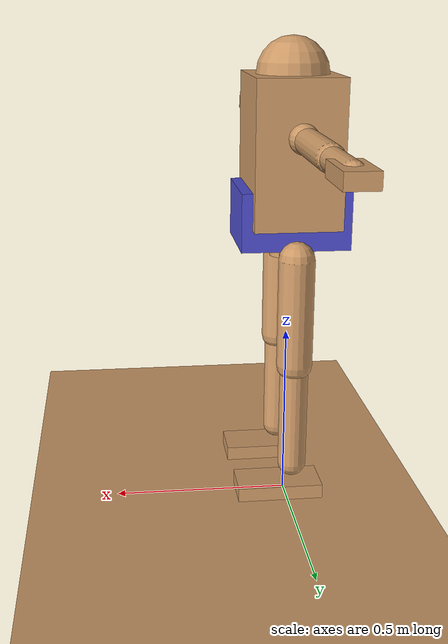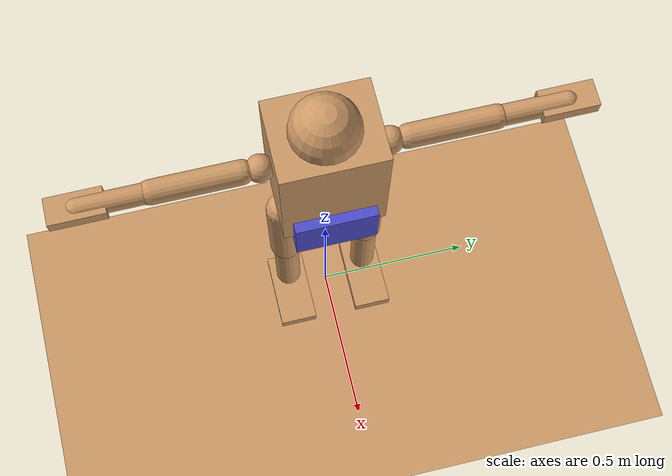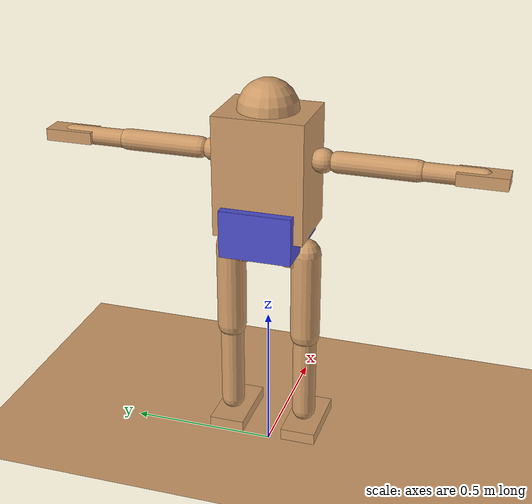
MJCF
<!-- MuJoCo model file for Unitree G1 Humanoid Robot -->
<mujoco model="unitree_g1">
    <compiler angle="radian" meshdir="../meshes" texturedir="../textures"/>

    <default>
        <joint armature="0.01" damping="0.1" limited="true"/>
        <geom conaffinity="0" condim="3" density="1000" friction="0.7 0.1 0.1" rgba="0.8 0.6 0.4 1"/>
        <motor ctrllimited="true" ctrlrange="-100 100"/>
    </default>

    <asset>
        <texture type="skybox" builtin="gradient" rgb1="0.3 0.5 0.7" rgb2="0 0 0" width="512" height="512"/>
        <texture name="texplane" type="2d" builtin="checker" rgb1=".2 .3 .4" rgb2=".1 0.15 0.2" width="512" height="512" mark="cross" markrgb=".8 .8 .8"/>
        <material name="matplane" reflectance="0.3" texture="texplane" texrepeat="1 1" texuniform="true"/>
    </asset>

    <worldbody>
        <light directional="true" diffuse=".4 .4 .4" specular="0.1 0.1 0.1" pos="0 0 5.0" dir="0 0 -1" castshadow="false"/>
        <light directional="false" diffuse=".7 .7 .7" specular="0.3 0.3 0.3" pos="2 -2 4" dir="-2 2 -4" castshadow="true"/>
        <geom name="floor" pos="0 0 0" size="50 50 1" type="plane" material="matplane" condim="3"/>

        <!-- Base/Pelvis -->
        <body name="base_link" pos="0 0 0.85">
            <inertial pos="0 0 0" mass="5.0" diaginertia="0.05 0.05 0.03"/>
            <joint name="floating_base" type="free"/>
            <geom name="pelvis" type="box" size="0.15 0.12 0.08" rgba="0.3 0.3 0.8 1"/>
            <!-- IMU site -->
            <site name="imu_site" pos="0 0 0" size="0.01" rgba="0 0 1 0"/>

            <!-- Left Leg -->
            <body name="left_hip_yaw" pos="0 0.08 -0.05">
                <inertial pos="0 0 -0.05" mass="1.0" diaginertia="0.002 0.002 0.001"/>
                <joint name="left_hip_yaw_joint" type="hinge" axis="0 0 1" range="-0.5 0.5"/>
                <geom name="left_hip_yaw_geom" type="cylinder" size="0.04 0.03" euler="1.57 0 0"/>

                <body name="left_hip_roll" pos="0 0 -0.05">
                    <inertial pos="0 0.03 0" mass="1.5" diaginertia="0.003 0.003 0.002"/>
                    <joint name="left_hip_roll_joint" type="hinge" axis="1 0 0" range="-0.4 0.8"/>
                    <geom name="left_hip_roll_geom" type="cylinder" size="0.04 0.04" euler="0 0 0"/>

                    <body name="left_hip_pitch" pos="0 0.05 0">
                        <inertial pos="0 0 -0.15" mass="2.0" diaginertia="0.01 0.01 0.003"/>
                        <joint name="left_hip_pitch_joint" type="hinge" axis="0 1 0" range="-2.0 0.7"/>
                        <geom name="left_thigh" type="capsule" fromto="0 0 0 0 0 -0.3" size="0.05"/>

                        <body name="left_knee" pos="0 0 -0.3">
                            <inertial pos="0 0 -0.15" mass="1.5" diaginertia="0.008 0.008 0.002"/>
                            <joint name="left_knee_joint" type="hinge" axis="0 1 0" range="-0.1 2.5"/>
                            <geom name="left_shin" type="capsule" fromto="0 0 0 0 0 -0.3" size="0.04"/>

                            <body name="left_ankle_pitch" pos="0 0 -0.3">
                                <inertial pos="0 0 0" mass="0.5" diaginertia="0.002 0.002 0.001"/>
                                <joint name="left_ankle_pitch_joint" type="hinge" axis="0 1 0" range="-0.7 0.7"/>
                                <geom name="left_ankle_pitch_geom" type="cylinder" size="0.03 0.02" euler="0 1.57 0"/>

                                <body name="left_ankle_roll" pos="0 0 -0.05">
                                    <inertial pos="0 0 -0.025" mass="0.8" diaginertia="0.002 0.004 0.003"/>
                                    <joint name="left_ankle_roll_joint" type="hinge" axis="1 0 0" range="-0.4 0.4"/>
                                    <geom name="left_foot" type="box" size="0.12 0.06 0.02" pos="0.04 0 -0.02"/>
                                </body>
                            </body>
                        </body>
                    </body>
                </body>
            </body>

            <!-- Right Leg -->
            <body name="right_hip_yaw" pos="0 -0.08 -0.05">
                <inertial pos="0 0 -0.05" mass="1.0" diaginertia="0.002 0.002 0.001"/>
                <joint name="right_hip_yaw_joint" type="hinge" axis="0 0 1" range="-0.5 0.5"/>
                <geom name="right_hip_yaw_geom" type="cylinder" size="0.04 0.03" euler="1.57 0 0"/>

                <body name="right_hip_roll" pos="0 0 -0.05">
                    <inertial pos="0 -0.03 0" mass="1.5" diaginertia="0.003 0.003 0.002"/>
                    <joint name="right_hip_roll_joint" type="hinge" axis="1 0 0" range="-0.8 0.4"/>
                    <geom name="right_hip_roll_geom" type="cylinder" size="0.04 0.04" euler="0 0 0"/>

                    <body name="right_hip_pitch" pos="0 -0.05 0">
                        <inertial pos="0 0 -0.15" mass="2.0" diaginertia="0.01 0.01 0.003"/>
                        <joint name="right_hip_pitch_joint" type="hinge" axis="0 1 0" range="-2.0 0.7"/>
                        <geom name="right_thigh" type="capsule" fromto="0 0 0 0 0 -0.3" size="0.05"/>

                        <body name="right_knee" pos="0 0 -0.3">
                            <inertial pos="0 0 -0.15" mass="1.5" diaginertia="0.008 0.008 0.002"/>
                            <joint name="right_knee_joint" type="hinge" axis="0 1 0" range="-0.1 2.5"/>
                            <geom name="right_shin" type="capsule" fromto="0 0 0 0 0 -0.3" size="0.04"/>

                            <body name="right_ankle_pitch" pos="0 0 -0.3">
                                <inertial pos="0 0 0" mass="0.5" diaginertia="0.002 0.002 0.001"/>
                                <joint name="right_ankle_pitch_joint" type="hinge" axis="0 1 0" range="-0.7 0.7"/>
                                <geom name="right_ankle_pitch_geom" type="cylinder" size="0.03 0.02" euler="0 1.57 0"/>

                                <body name="right_ankle_roll" pos="0 0 -0.05">
                                    <inertial pos="0 0 -0.025" mass="0.8" diaginertia="0.002 0.004 0.003"/>
                                    <joint name="right_ankle_roll_joint" type="hinge" axis="1 0 0" range="-0.4 0.4"/>
                                    <geom name="right_foot" type="box" size="0.12 0.06 0.02" pos="0.04 0 -0.02"/>
                                </body>
                            </body>
                        </body>
                    </body>
                </body>
            </body>

            <!-- Torso -->
            <body name="torso" pos="0 0 0.08">
                <inertial pos="0 0 0.1" mass="8.0" diaginertia="0.08 0.08 0.05"/>
                <joint name="waist_yaw_joint" type="hinge" axis="0 0 1" range="-0.8 0.8"/>
                <geom name="torso_geom" type="box" size="0.12 0.15 0.2" pos="0 0 0.1"/>

                <!-- Left Arm -->
                <body name="left_shoulder_pitch" pos="0 0.18 0.15">
                    <inertial pos="0 0 0" mass="1.0" diaginertia="0.002 0.002 0.001"/>
                    <joint name="left_shoulder_pitch_joint" type="hinge" axis="0 1 0" range="-2.8 2.8"/>
                    <geom name="left_shoulder_pitch_geom" type="sphere" size="0.04"/>

                    <body name="left_shoulder_roll" pos="0 0.05 0">
                        <inertial pos="0 0.1 0" mass="0.8" diaginertia="0.005 0.001 0.005"/>
                        <joint name="left_shoulder_roll_joint" type="hinge" axis="1 0 0" range="-0.3 3.1"/>
                        <geom name="left_upper_arm" type="capsule" fromto="0 0 0 0 0.25 0" size="0.035"/>

                        <body name="left_elbow" pos="0 0.25 0">
                            <inertial pos="0 0.1 0" mass="0.6" diaginertia="0.003 0.001 0.003"/>
                            <joint name="left_elbow_joint" type="hinge" axis="0 1 0" range="-2.0 0.1"/>
                            <geom name="left_forearm" type="capsule" fromto="0 0 0 0 0.2 0" size="0.03"/>

                            <body name="left_wrist" pos="0 0.2 0">
                                <inertial pos="0 0.05 0" mass="0.3" diaginertia="0.001 0.001 0.001"/>
                                <joint name="left_wrist_joint" type="hinge" axis="0 1 0" range="-1.0 1.0"/>
                                <geom name="left_hand" type="box" size="0.04 0.08 0.02"/>
                            </body>
                        </body>
                    </body>
                </body>

                <!-- Right Arm -->
                <body name="right_shoulder_pitch" pos="0 -0.18 0.15">
                    <inertial pos="0 0 0" mass="1.0" diaginertia="0.002 0.002 0.001"/>
                    <joint name="right_shoulder_pitch_joint" type="hinge" axis="0 1 0" range="-2.8 2.8"/>
                    <geom name="right_shoulder_pitch_geom" type="sphere" size="0.04"/>

                    <body name="right_shoulder_roll" pos="0 -0.05 0">
                        <inertial pos="0 -0.1 0" mass="0.8" diaginertia="0.005 0.001 0.005"/>
                        <joint name="right_shoulder_roll_joint" type="hinge" axis="1 0 0" range="-3.1 0.3"/>
                        <geom name="right_upper_arm" type="capsule" fromto="0 0 0 0 -0.25 0" size="0.035"/>

                        <body name="right_elbow" pos="0 -0.25 0">
                            <inertial pos="0 -0.1 0" mass="0.6" diaginertia="0.003 0.001 0.003"/>
                            <joint name="right_elbow_joint" type="hinge" axis="0 1 0" range="-2.0 0.1"/>
                            <geom name="right_forearm" type="capsule" fromto="0 0 0 0 -0.2 0" size="0.03"/>

                            <body name="right_wrist" pos="0 -0.2 0">
                                <inertial pos="0 -0.05 0" mass="0.3" diaginertia="0.001 0.001 0.001"/>
                                <joint name="right_wrist_joint" type="hinge" axis="0 1 0" range="-1.0 1.0"/>
                                <geom name="right_hand" type="box" size="0.04 0.08 0.02"/>
                            </body>
                        </body>
                    </body>
                </body>

                <!-- Head -->
                <body name="head" pos="0 0 0.25">
                    <inertial pos="0 0 0.05" mass="2.0" diaginertia="0.01 0.01 0.008"/>
                    <joint name="head_yaw_joint" type="hinge" axis="0 0 1" range="-1.5 1.5"/>
                    <geom name="head_geom" type="sphere" size="0.1" pos="0 0 0.05"/>
                </body>
            </body>
        </body>
    </worldbody>

    <actuator>
        <!-- Leg actuators -->
        <motor name="left_hip_yaw" joint="left_hip_yaw_joint" gear="100"/>
        <motor name="left_hip_roll" joint="left_hip_roll_joint" gear="100"/>
        <motor name="left_hip_pitch" joint="left_hip_pitch_joint" gear="150"/>
        <motor name="left_knee" joint="left_knee_joint" gear="150"/>
        <motor name="left_ankle_pitch" joint="left_ankle_pitch_joint" gear="100"/>
        <motor name="left_ankle_roll" joint="left_ankle_roll_joint" gear="100"/>

        <motor name="right_hip_yaw" joint="right_hip_yaw_joint" gear="100"/>
        <motor name="right_hip_roll" joint="right_hip_roll_joint" gear="100"/>
        <motor name="right_hip_pitch" joint="right_hip_pitch_joint" gear="150"/>
        <motor name="right_knee" joint="right_knee_joint" gear="150"/>
        <motor name="right_ankle_pitch" joint="right_ankle_pitch_joint" gear="100"/>
        <motor name="right_ankle_roll" joint="right_ankle_roll_joint" gear="100"/>

        <!-- Torso actuator -->
        <motor name="waist_yaw" joint="waist_yaw_joint" gear="100"/>

        <!-- Arm actuators -->
        <motor name="left_shoulder_pitch" joint="left_shoulder_pitch_joint" gear="50"/>
        <motor name="left_shoulder_roll" joint="left_shoulder_roll_joint" gear="50"/>
        <motor name="left_elbow" joint="left_elbow_joint" gear="50"/>
        <motor name="left_wrist" joint="left_wrist_joint" gear="30"/>

        <motor name="right_shoulder_pitch" joint="right_shoulder_pitch_joint" gear="50"/>
        <motor name="right_shoulder_roll" joint="right_shoulder_roll_joint" gear="50"/>
        <motor name="right_elbow" joint="right_elbow_joint" gear="50"/>
        <motor name="right_wrist" joint="right_wrist_joint" gear="30"/>

        <!-- Head actuator -->
        <motor name="head_yaw" joint="head_yaw_joint" gear="30"/>
    </actuator>

    <sensor>
        <!-- IMU sensor -->
        <accelerometer name="imu_accel" site="imu_site"/>
        <gyro name="imu_gyro" site="imu_site"/>

        <!-- Joint position sensors -->
        <jointpos name="joint_pos" joint="left_hip_yaw_joint"/>
    </sensor>
</mujoco>
